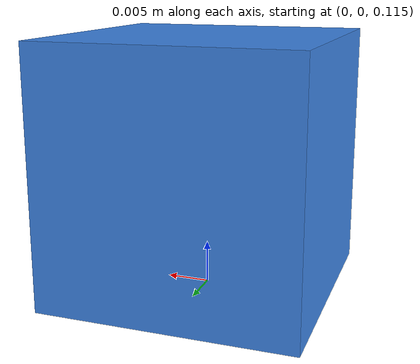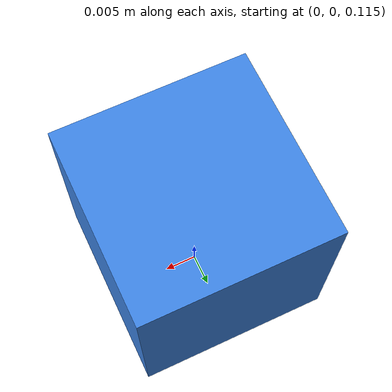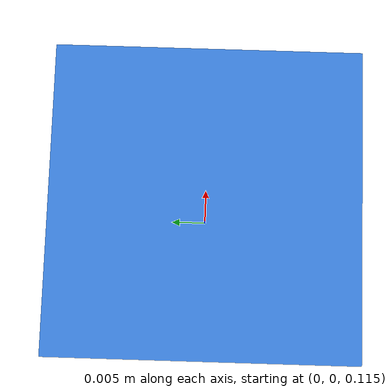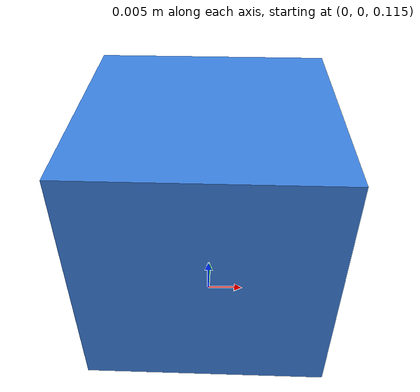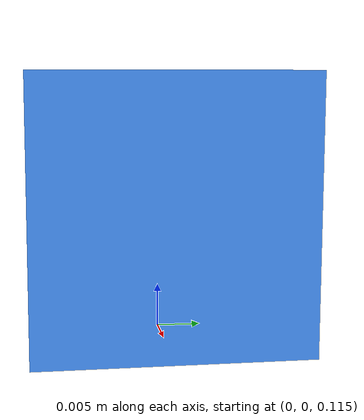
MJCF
<mujoco model="dexplay_phase0_cube">
  <compiler angle="radian"/>
  <default>
    <geom condim="6" friction="1.0 0.05 0.002" solref="0.005 1"/>
  </default>

  <worldbody>
    <body name="cube" pos="0 0 0.13">
      <freejoint name="cube_free"/>
      <geom
        name="cube_geom"
        type="box"
        size="0.015 0.015 0.015"
        mass="0.035"
        rgba="0.24 0.52 0.90 1"
      />
      <site name="cube_center" pos="0 0 0" size="0.003" rgba="0 0.8 1 1"/>
    </body>
  </worldbody>

  <keyframe>
    <key name="default" qpos="0 0 0.13 1 0 0 0"/>
  </keyframe>
</mujoco>
